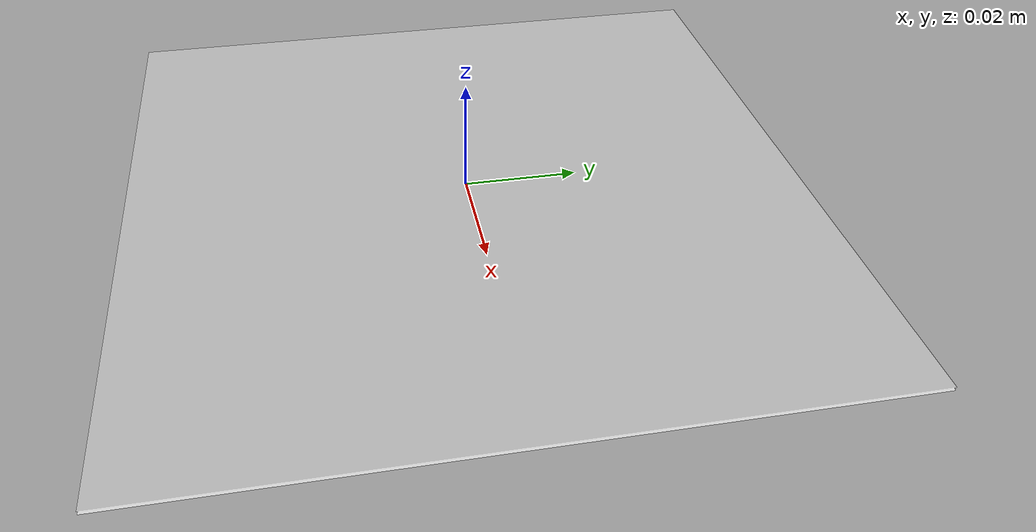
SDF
<?xml version="1.0" ?>
<sdf version="1.6">
  <model name="aruco_target">
    <static>true</static>
    <link name="plate">

      <visual name="plate_visual">
        <geometry>
          <mesh>
            <uri>model://aruco_target/meshes/aruco_dict_6x6_250_id1.dae</uri>
          </mesh>
        </geometry>
      </visual>

      <!-- A thin slab behind the printed face, so the object has physical
           extent for the arm to approach without the collision box standing
           proud of the surface the detector reports. -->
      <collision name="plate_collision">
        <pose>0 0 -0.005 0 0 0</pose>
        <geometry>
          <box><size>0.12 0.12 0.01</size></box>
        </geometry>
      </collision>

    </link>
  </model>
</sdf>
